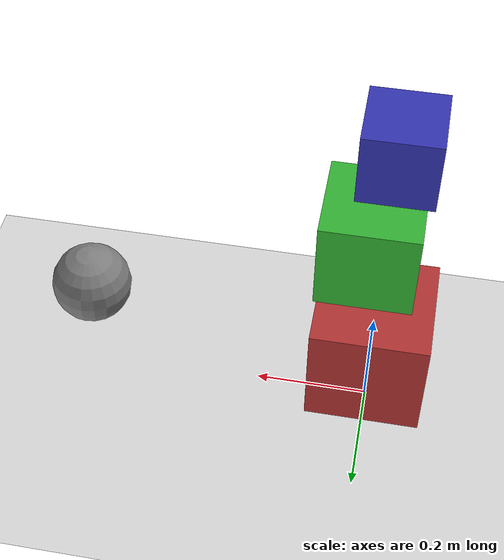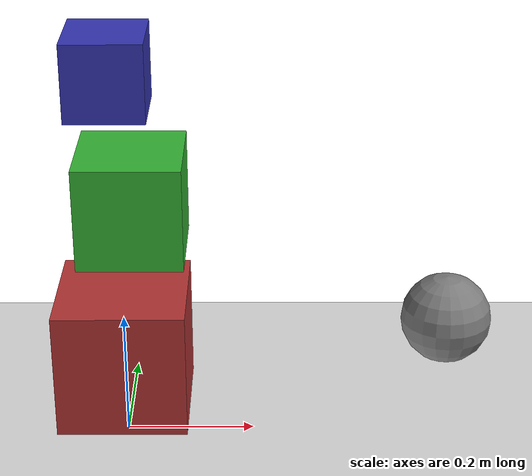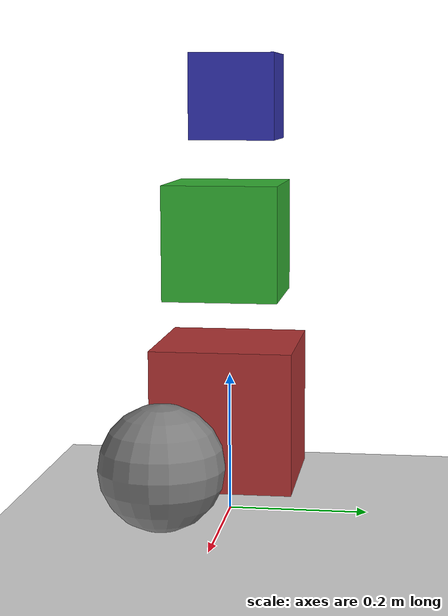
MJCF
<!-- Box stack with friction. Stresses CONTACT_PERTURB / GEOM_PERTURB / SOLVER_TOGGLE. -->
<mujoco model="box_stack">
  <option gravity="0 0 -9.81" timestep="0.002" integrator="Euler" iterations="20"/>
  <default>
    <geom friction="0.6 0.005 0.0001" condim="3"/>
  </default>
  <worldbody>
    <light pos="0 0 3"/>
    <geom name="floor" type="plane" size="3 3 0.1" rgba="0.85 0.85 0.85 1"/>
    <body name="b1" pos="0 0 0.15">
      <freejoint/>
      <geom name="g1" type="box" size="0.1 0.1 0.1" mass="1.0" rgba="0.7 0.2 0.2 1"/>
    </body>
    <body name="b2" pos="0.02 0 0.4">
      <freejoint/>
      <geom name="g2" type="box" size="0.08 0.08 0.08" mass="0.6" rgba="0.2 0.7 0.2 1"/>
    </body>
    <body name="b3" pos="-0.01 0.01 0.6">
      <freejoint/>
      <geom name="g3" type="box" size="0.06 0.06 0.06" mass="0.3" rgba="0.2 0.2 0.7 1"/>
    </body>
    <body name="ball" pos="0.5 0 0.2">
      <freejoint/>
      <geom name="gs" type="sphere" size="0.07" mass="0.4"/>
    </body>
  </worldbody>
</mujoco>
